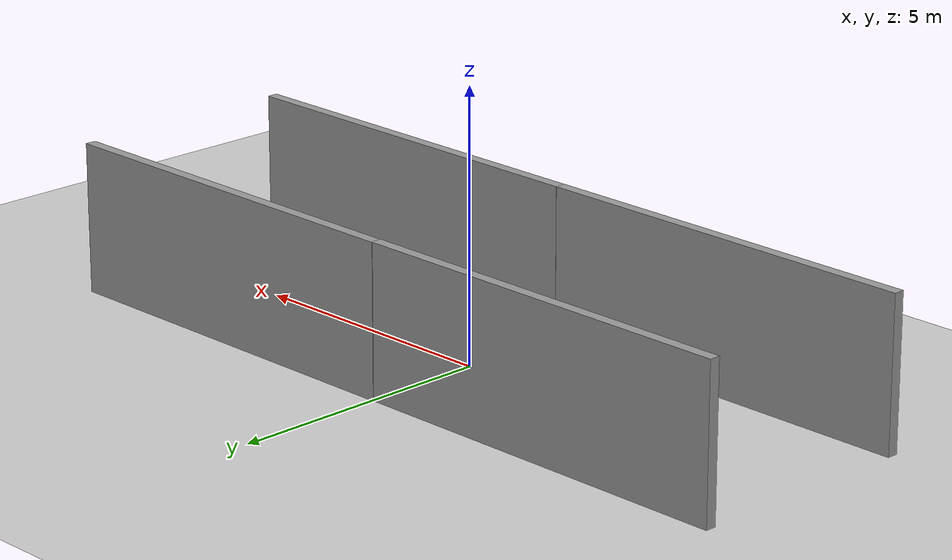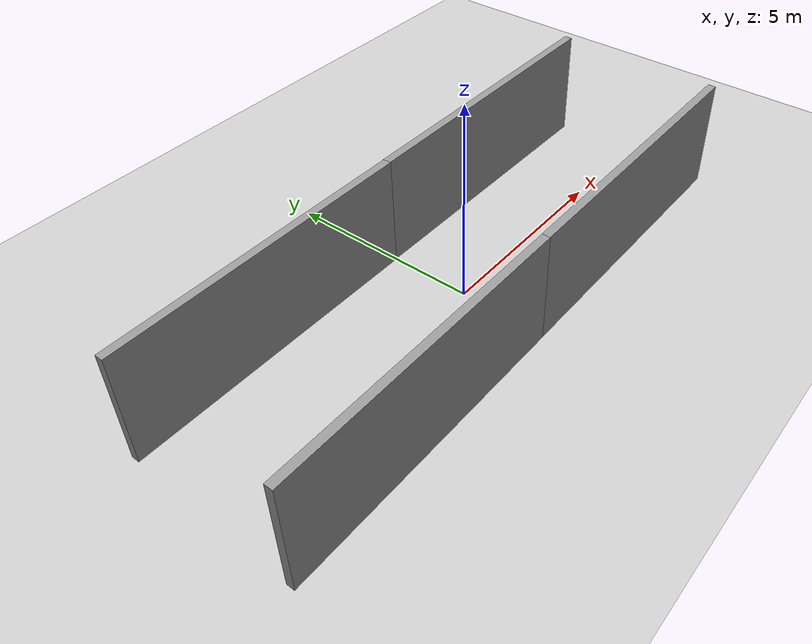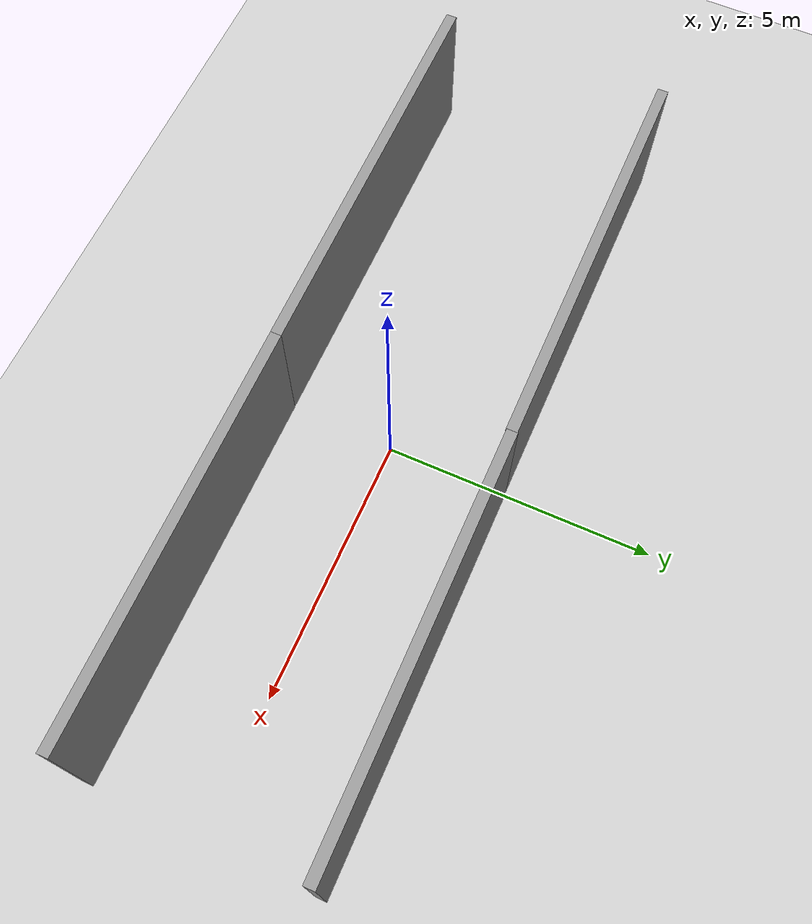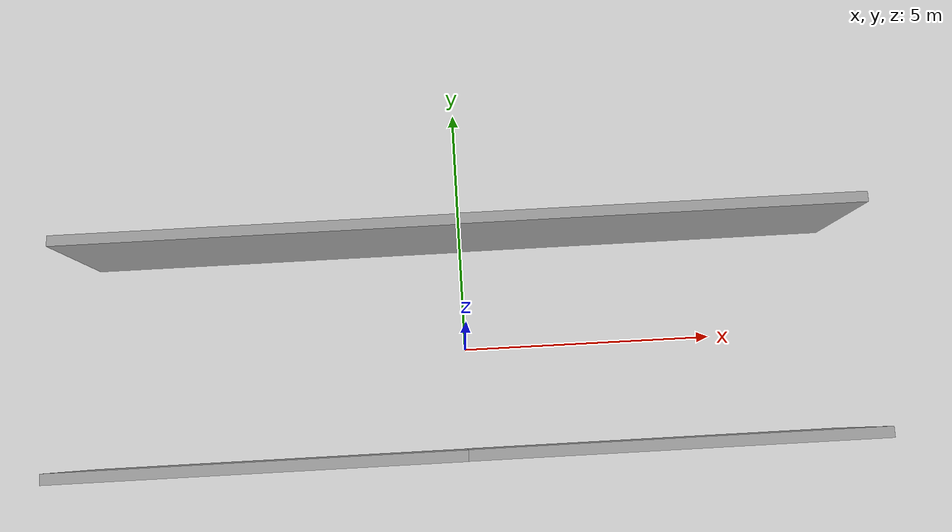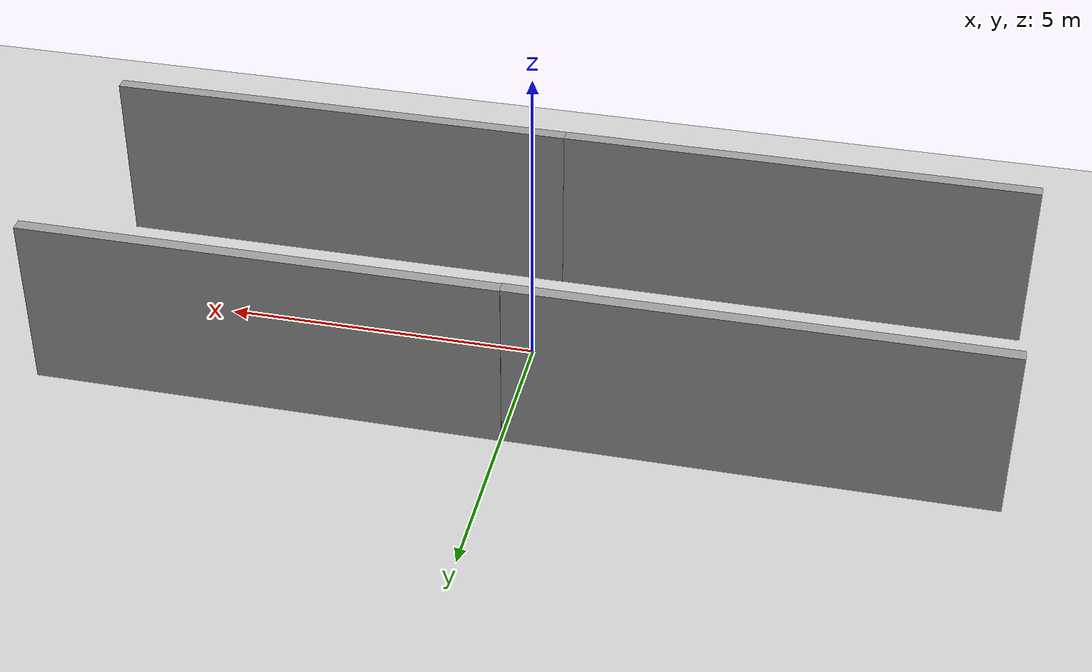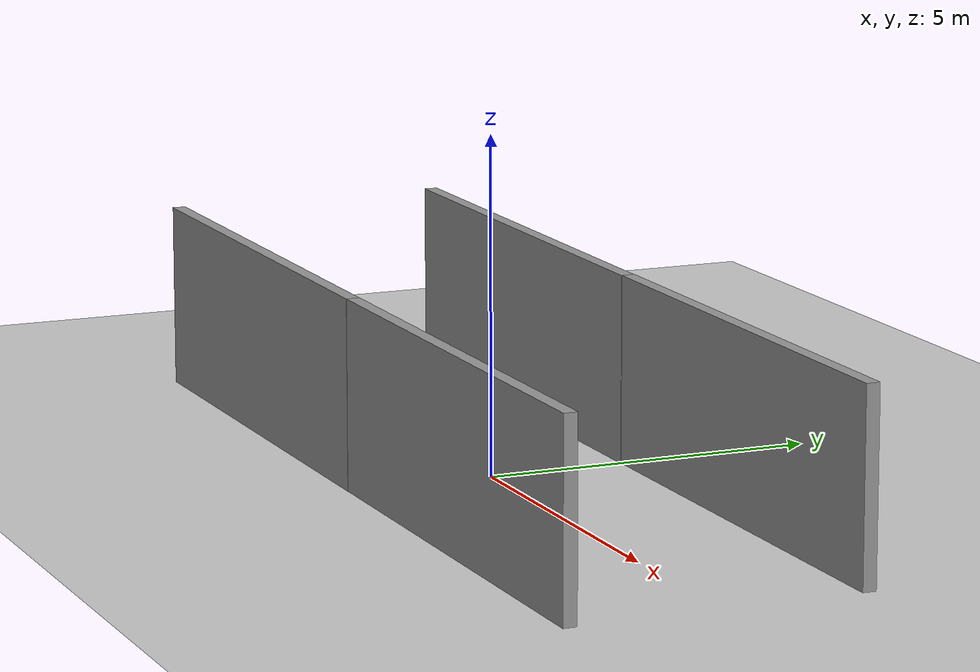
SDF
<sdf version='1.6'>
  <world name='default'>
    <light name='sun' type='directional'>
      <cast_shadows>1</cast_shadows>
      <pose frame=''>0 0 10 0 -0 0</pose>
      <diffuse>0.8 0.8 0.8 1</diffuse>
      <specular>0.1 0.1 0.1 1</specular>
      <attenuation>
        <range>1000</range>
        <constant>0.9</constant>
        <linear>0.01</linear>
        <quadratic>0.001</quadratic>
      </attenuation>
      <direction>-0.5 0.5 -1</direction>
    </light>
    <model name='ground_plane'>
      <static>1</static>
      <link name='link'>
        <collision name='collision'>
          <geometry>
            <plane>
              <normal>0 0 1</normal>
              <size>100 100</size>
            </plane>
          </geometry>
          <surface>
            <friction>
              <ode>
                <mu>100</mu>
                <mu2>50</mu2>
              </ode>
              <torsional>
                <ode/>
              </torsional>
            </friction>
            <contact>
              <ode/>
            </contact>
            <bounce/>
          </surface>
          <max_contacts>10</max_contacts>
        </collision>
        <visual name='visual'>
          <cast_shadows>0</cast_shadows>
          <geometry>
            <plane>
              <normal>0 0 1</normal>
              <size>100 100</size>
            </plane>
          </geometry>
          <material>
            <script>
              <uri>file://media/materials/scripts/gazebo.material</uri>
              <name>Gazebo/Grey</name>
            </script>
          </material>
        </visual>
        <self_collide>0</self_collide>
        <enable_wind>0</enable_wind>
        <kinematic>0</kinematic>
      </link>
    </model>
    <gravity>0 0 -9.8</gravity>
    <magnetic_field>6e-06 2.3e-05 -4.2e-05</magnetic_field>
    <atmosphere type='adiabatic'/>
    <physics name='default_physics' default='0' type='ode'>
      <max_step_size>0.001</max_step_size>
      <real_time_factor>1</real_time_factor>
      <real_time_update_rate>1000</real_time_update_rate>
    </physics>
    <scene>
      <ambient>0.4 0.4 0.4 1</ambient>
      <background>0.7 0.7 0.7 1</background>
      <shadows>1</shadows>
    </scene>
    <wind/>
    <spherical_coordinates>
      <surface_model>EARTH_WGS84</surface_model>
      <latitude_deg>0</latitude_deg>
      <longitude_deg>0</longitude_deg>
      <elevation>0</elevation>
      <heading_deg>0</heading_deg>
    </spherical_coordinates>
    <model name='grey_wall'>
      <static>1</static>
      <link name='link'>
        <pose frame=''>0 0 1.4 0 -0 0</pose>
        <collision name='collision'>
          <geometry>
            <box>
              <size>7.5 0.2 2.8</size>
            </box>
          </geometry>
          <max_contacts>10</max_contacts>
          <surface>
            <contact>
              <ode/>
            </contact>
            <bounce/>
            <friction>
              <torsional>
                <ode/>
              </torsional>
              <ode/>
            </friction>
          </surface>
        </collision>
        <visual name='visual'>
          <cast_shadows>0</cast_shadows>
          <geometry>
            <box>
              <size>7.5 0.2 2.8</size>
            </box>
          </geometry>
          <material>
            <script>
              <uri>model://grey_wall/materials/scripts</uri>
              <uri>model://grey_wall/materials/textures</uri>
              <name>vrc/grey_wall</name>
            </script>
          </material>
        </visual>
        <self_collide>0</self_collide>
        <enable_wind>0</enable_wind>
        <kinematic>0</kinematic>
      </link>
      <pose frame=''>-3.75051 2.14574 0 0 -0 0</pose>
    </model>
    <model name='grey_wall_0'>
      <static>1</static>
      <link name='link'>
        <pose frame=''>0 0 1.4 0 -0 0</pose>
        <collision name='collision'>
          <geometry>
            <box>
              <size>7.5 0.2 2.8</size>
            </box>
          </geometry>
          <max_contacts>10</max_contacts>
          <surface>
            <contact>
              <ode/>
            </contact>
            <bounce/>
            <friction>
              <torsional>
                <ode/>
              </torsional>
              <ode/>
            </friction>
          </surface>
        </collision>
        <visual name='visual'>
          <cast_shadows>0</cast_shadows>
          <geometry>
            <box>
              <size>7.5 0.2 2.8</size>
            </box>
          </geometry>
          <material>
            <script>
              <uri>model://grey_wall/materials/scripts</uri>
              <uri>model://grey_wall/materials/textures</uri>
              <name>vrc/grey_wall</name>
            </script>
          </material>
        </visual>
        <self_collide>0</self_collide>
        <enable_wind>0</enable_wind>
        <kinematic>0</kinematic>
      </link>
      <pose frame=''>3.73606 2.15697 0 0 -0 0</pose>
    </model>
    <model name='grey_wall_1'>
      <static>1</static>
      <link name='link'>
        <pose frame=''>0 0 1.4 0 -0 0</pose>
        <collision name='collision'>
          <geometry>
            <box>
              <size>7.5 0.2 2.8</size>
            </box>
          </geometry>
          <max_contacts>10</max_contacts>
          <surface>
            <contact>
              <ode/>
            </contact>
            <bounce/>
            <friction>
              <torsional>
                <ode/>
              </torsional>
              <ode/>
            </friction>
          </surface>
        </collision>
        <visual name='visual'>
          <cast_shadows>0</cast_shadows>
          <geometry>
            <box>
              <size>7.5 0.2 2.8</size>
            </box>
          </geometry>
          <material>
            <script>
              <uri>model://grey_wall/materials/scripts</uri>
              <uri>model://grey_wall/materials/textures</uri>
              <name>vrc/grey_wall</name>
            </script>
          </material>
        </visual>
        <self_collide>0</self_collide>
        <enable_wind>0</enable_wind>
        <kinematic>0</kinematic>
      </link>
      <pose frame=''>-3.81137 -2.10018 0 0 -0 0</pose>
    </model>
    <model name='grey_wall_2'>
      <static>1</static>
      <link name='link'>
        <pose frame=''>0 0 1.4 0 -0 0</pose>
        <collision name='collision'>
          <geometry>
            <box>
              <size>7.5 0.2 2.8</size>
            </box>
          </geometry>
          <max_contacts>10</max_contacts>
          <surface>
            <contact>
              <ode/>
            </contact>
            <bounce/>
            <friction>
              <torsional>
                <ode/>
              </torsional>
              <ode/>
            </friction>
          </surface>
        </collision>
        <visual name='visual'>
          <cast_shadows>0</cast_shadows>
          <geometry>
            <box>
              <size>7.5 0.2 2.8</size>
            </box>
          </geometry>
          <material>
            <script>
              <uri>model://grey_wall/materials/scripts</uri>
              <uri>model://grey_wall/materials/textures</uri>
              <name>vrc/grey_wall</name>
            </script>
          </material>
        </visual>
        <self_collide>0</self_collide>
        <enable_wind>0</enable_wind>
        <kinematic>0</kinematic>
      </link>
      <pose frame=''>3.68791 -2.09697 0 0 -0 0</pose>
    </model>
    <gui fullscreen='0'>
      <camera name='user_camera'>
        <pose frame=''>16.9455 -16.9666 8.51606 0 0.275643 2.35619</pose>
        <view_controller>orbit</view_controller>
        <projection_type>perspective</projection_type>
      </camera>
    </gui>
  </world>
</sdf>
